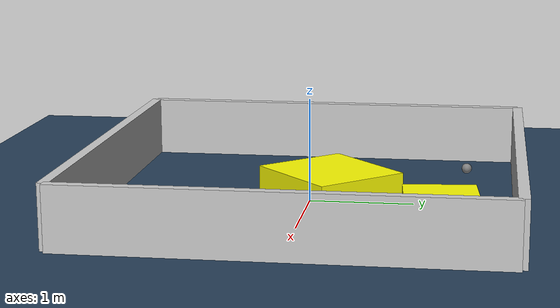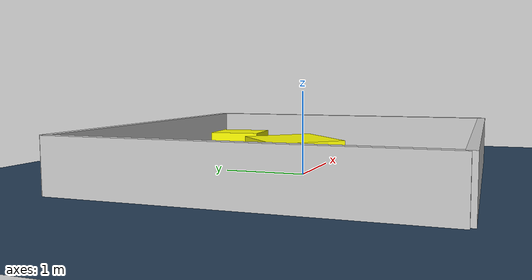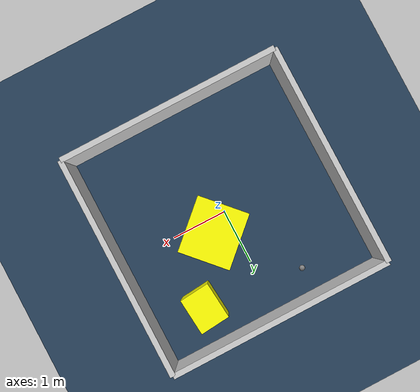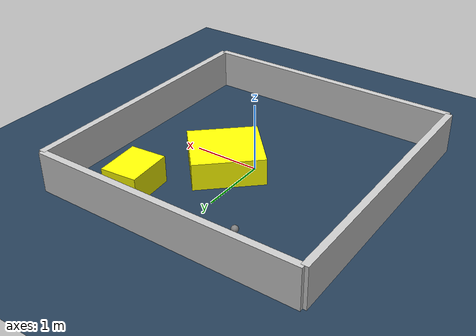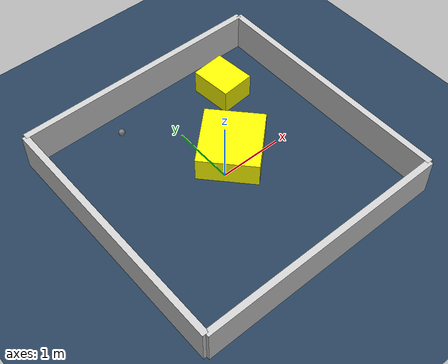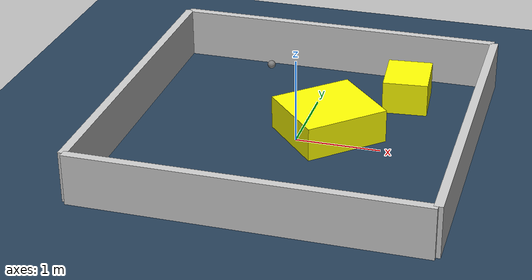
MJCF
<?xml version="1.0" ?>
<mujoco model="generated_environment">
  <option timestep="0.01" integrator="RK4" cone="elliptic"/>
  <default>
    <geom density="1"/>
  </default>
  <asset>
    <texture builtin="gradient" height="3072" rgb1="0.3 0.5 0.7" rgb2="0 0 0" type="skybox" width="512"/>
    <texture builtin="checker" height="300" mark="edge" markrgb="0.8 0.8 0.8" name="groundplane" rgb1="0.2 0.3 0.4" rgb2="0.1 0.2 0.3" type="2d" width="300"/>
    <material name="groundplane" reflectance="0.2" texrepeat="5 5" texture="groundplane" texuniform="true"/>
    <material name="robot" rgba="0.0 1.0 0.0 1"/>
  </asset>
  <worldbody>
    <light dir="0 0 -1" directional="true" pos="0 0 1.5"/>
    <geom condim="4" friction="1.0 0.005 0.001" material="groundplane" name="floor" size="0 0 0.05" type="plane"/>
    <body name="walls">
      <geom name="wall_1" condim="4" pos="-2.0 0.0 0.3" rgba="0.800000011920929 0.800000011920929 0.800000011920929 1.0" size="0.05 2.0 0.3" type="box"/>
      <geom name="wall_2" condim="4" pos="2.0 0.0 0.3" rgba="0.800000011920929 0.800000011920929 0.800000011920929 1.0" size="0.05 2.0 0.3" type="box"/>
      <geom name="wall_3" condim="4" pos="0.0 -2.0 0.3" rgba="0.800000011920929 0.800000011920929 0.800000011920929 1.0" size="2.0 0.05 0.3" type="box"/>
      <geom name="wall_4" condim="4" pos="0.0 2.0 0.3" rgba="0.800000011920929 0.800000011920929 0.800000011920929 1.0" size="2.0 0.05 0.3" type="box"/>
    </body>
    <body name="robot">
      <joint name="joint_x" type="slide" pos="0 0 0" axis="1 0 0"/>
      <joint name="joint_y" type="slide" pos="0 0 0" axis="0 1 0"/>
      <geom name="robot" type="sphere" pos="-0.7368983641206845 1.4915317638685512 0.2" size="0.05" mass="5." friction="1.0 0.005 0.0001" condim="4"/>
      <site name="sensor_ball"/>
    </body>
    <body name="obstacle_1_movable">
      <geom name="obstacle_1_movable" condim="4" pos="1.0583473271646433 1.2985034911406026 0.2" euler="0 0 275.1307595503516" friction="1.0 0.005 0.001" rgba="1 1 0 1" size="0.3326296424887687 0.27087213177051966 0.2" type="box" mass="0.1"/>
      <joint type="free"/>
    </body>
    <body name="obstacle_2_movable">
      <geom name="obstacle_2_movable" condim="4" pos="0.3263063684163787 0.23764270847320645 0.2" euler="0 0 132.637816424791" friction="1.0 0.005 0.001" rgba="1 1 0 1" size="0.46530620398397693 0.5084992438101071 0.2" type="box" mass="0.1"/>
      <joint type="free"/>
    </body>
  </worldbody>
  <actuator>
    <motor name="actuator_x" joint="joint_x" gear="1" ctrlrange="-1 1"/>
    <motor name="actuator_y" joint="joint_y" gear="1" ctrlrange="-1 1"/>
  </actuator>
</mujoco>
